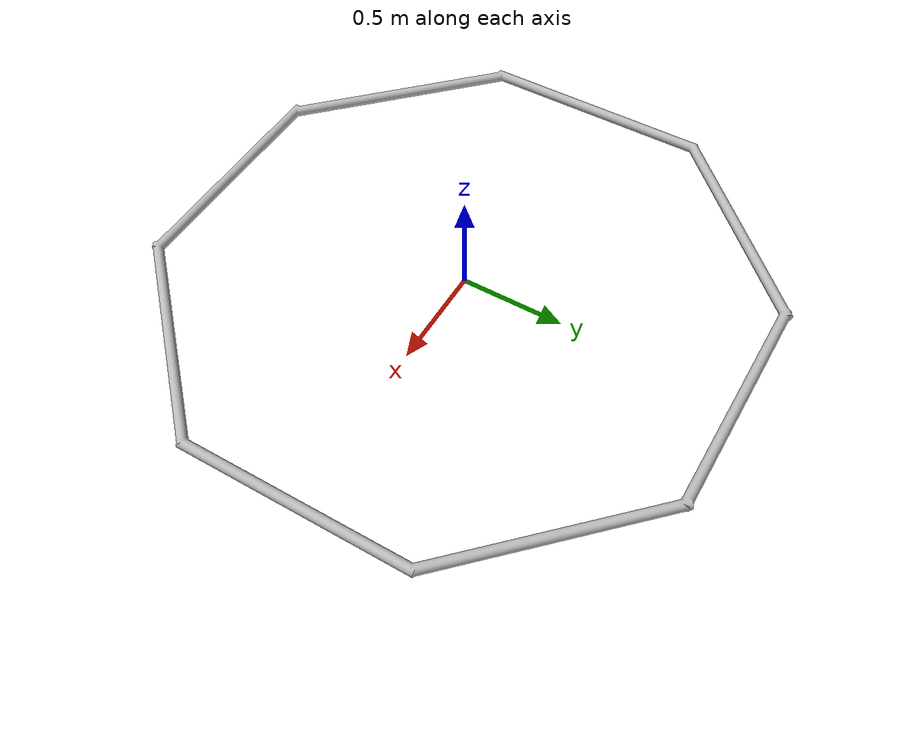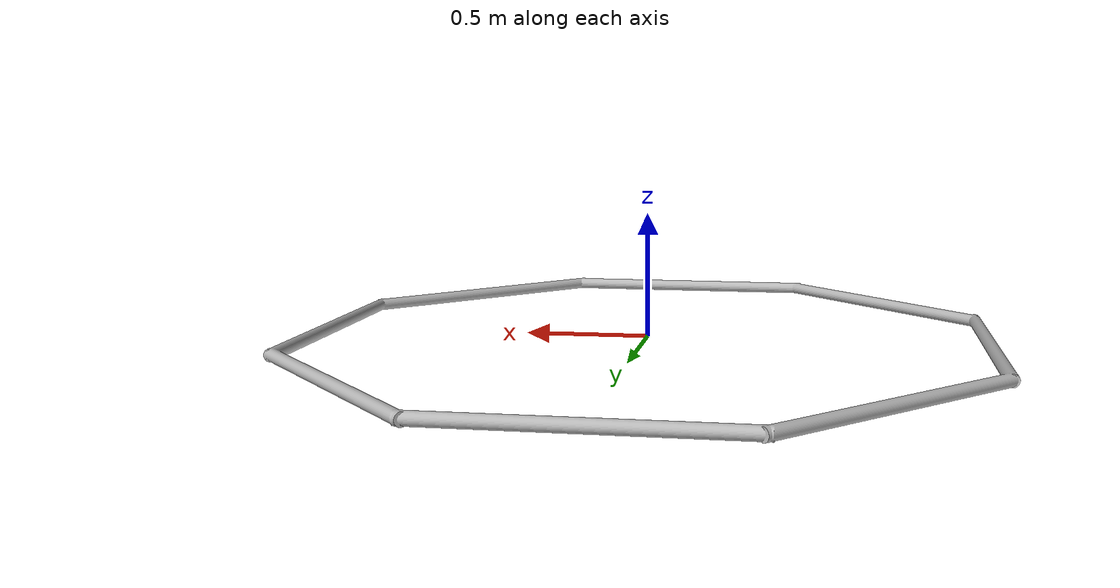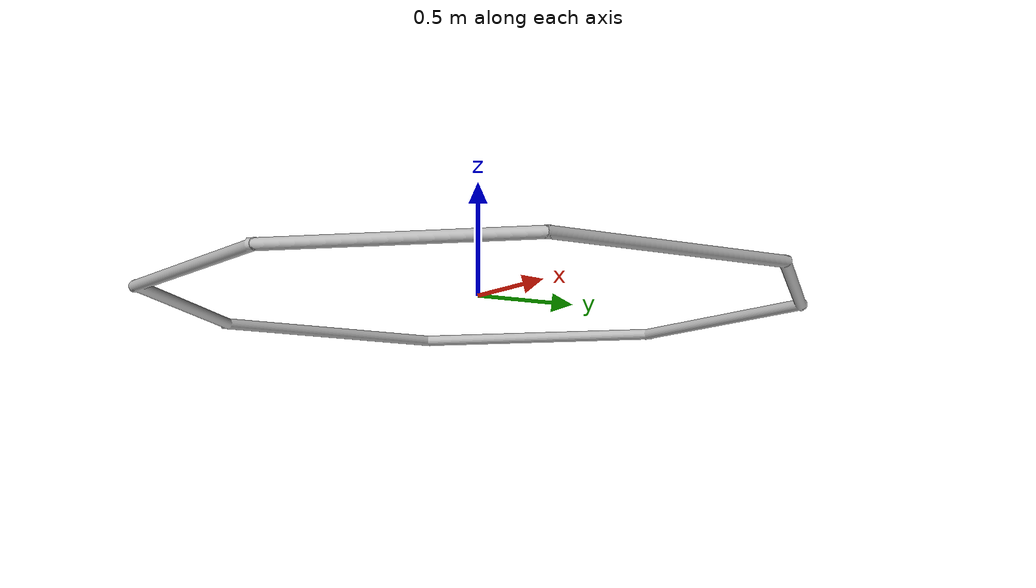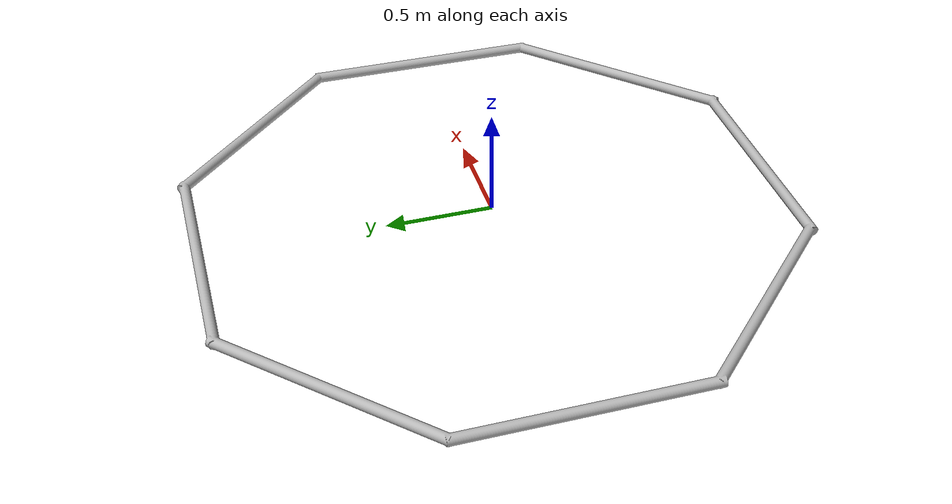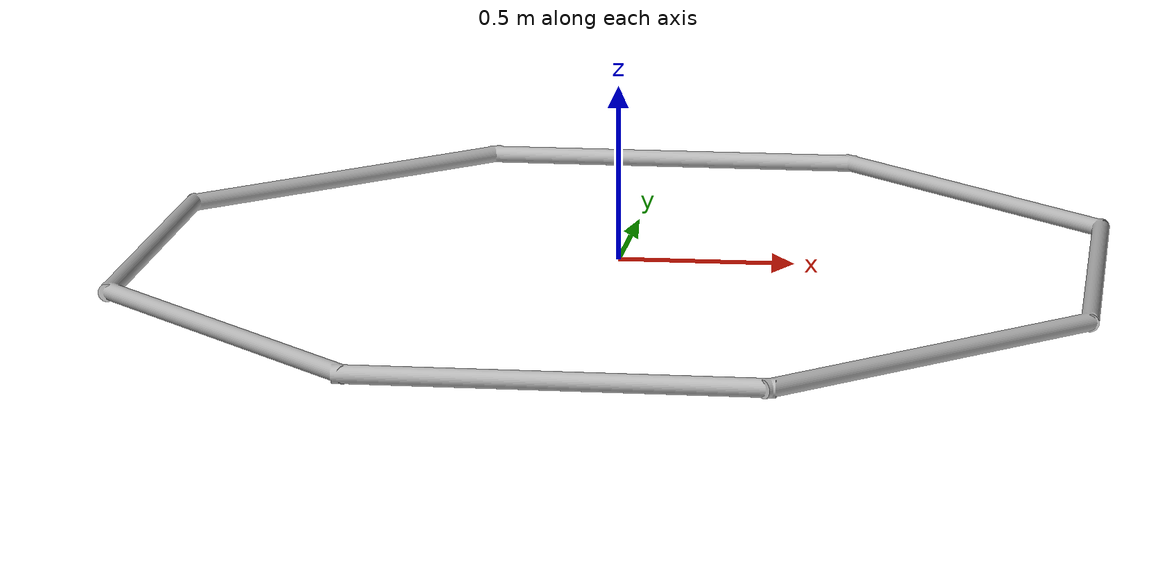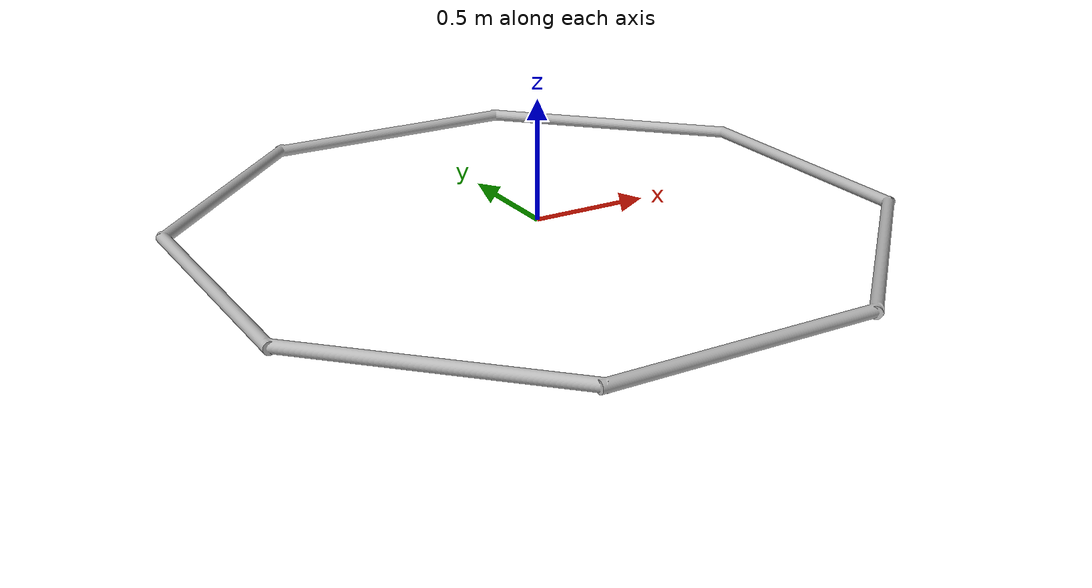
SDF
<?xml version="1.0" ?>
<sdf version="1.9">
    <model name="octagon">
        <static>true</static>
        <link name="octagon">
            <visual name="octagon_visual">
                <geometry>
                    <mesh>
                        <uri>octagon.dae</uri>
                    </mesh>
                </geometry>
            </visual>
            <collision name="octagon_visual">
                <geometry>
                    <mesh>
                        <uri>octagon.dae</uri>
                    </mesh>
                </geometry>
            </collision>
        </link>
    </model>
</sdf>
